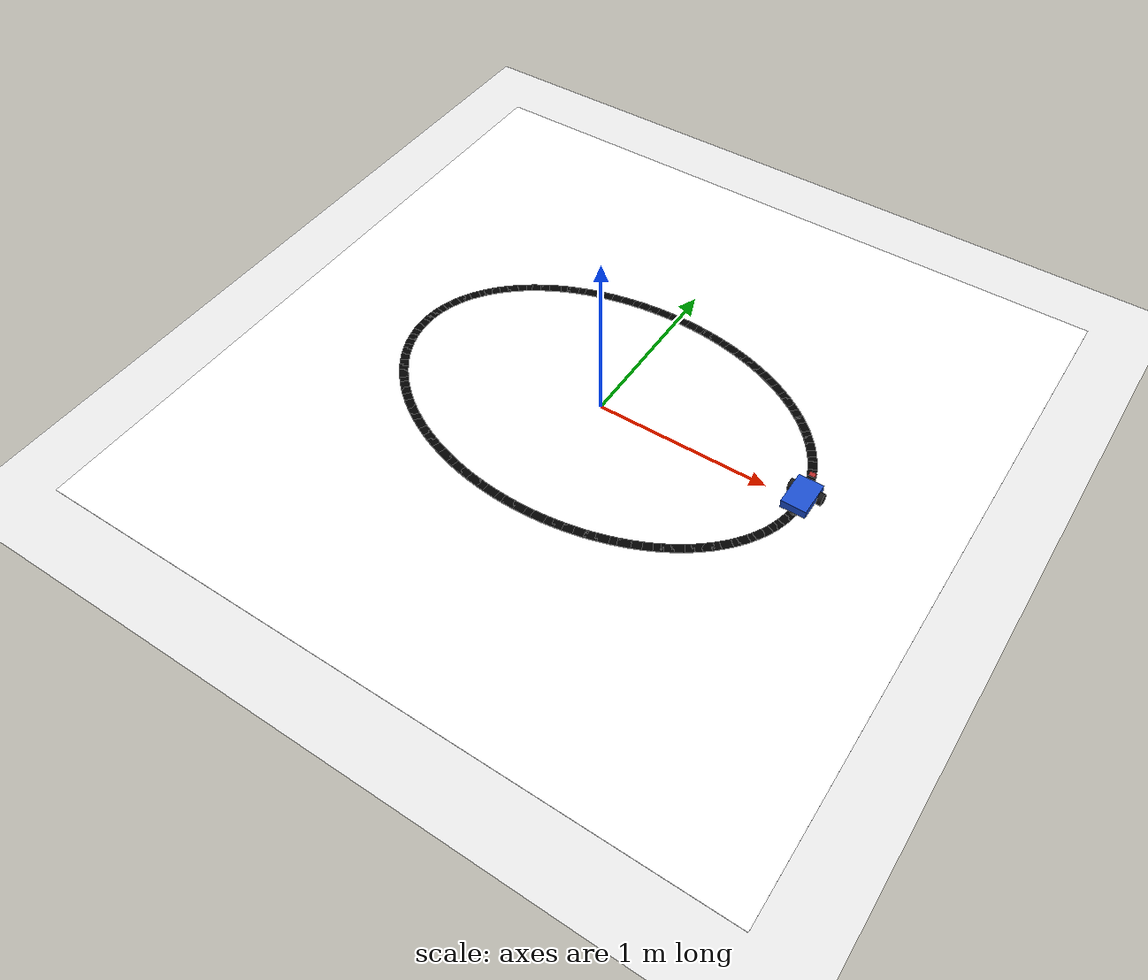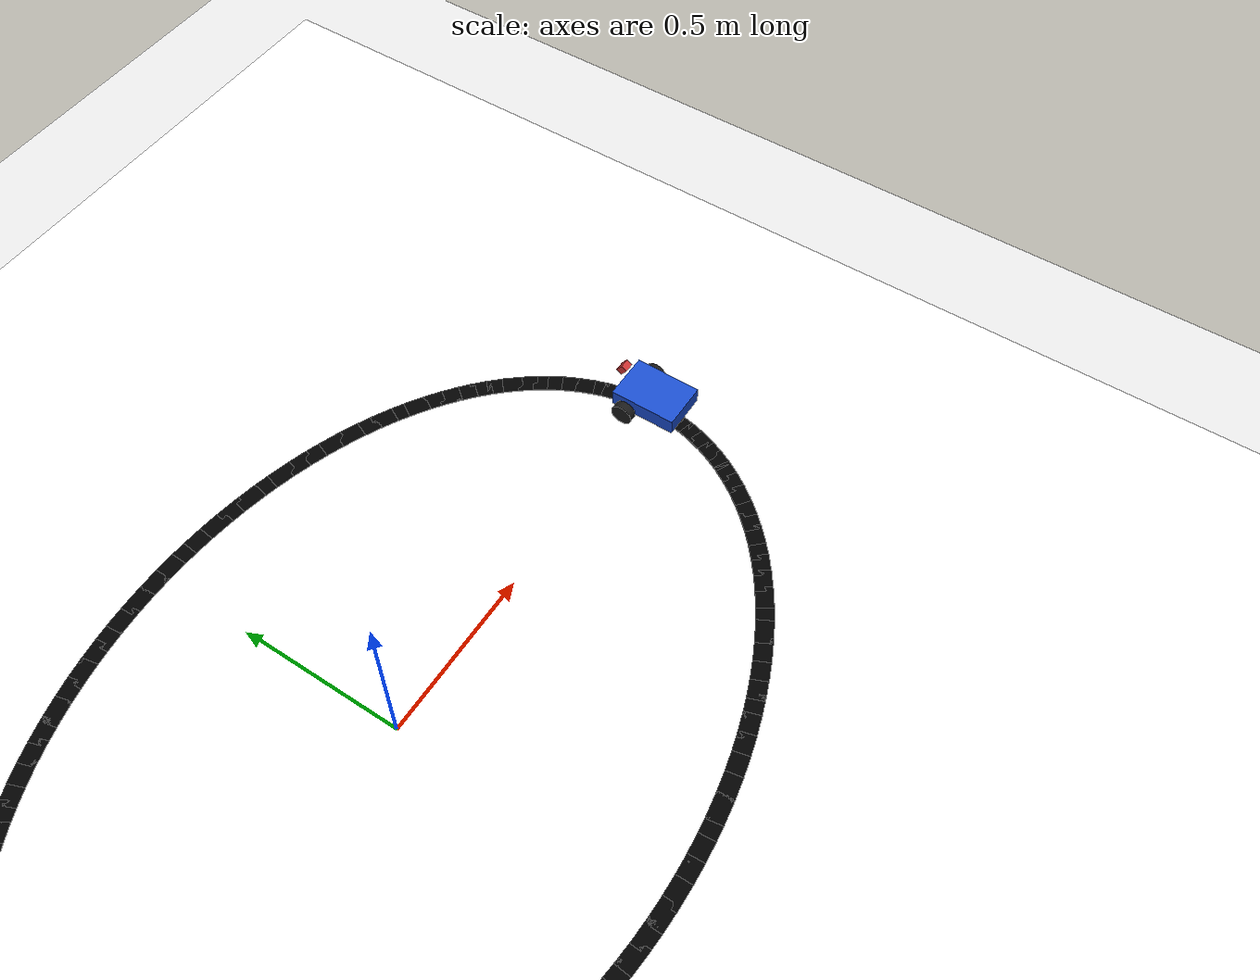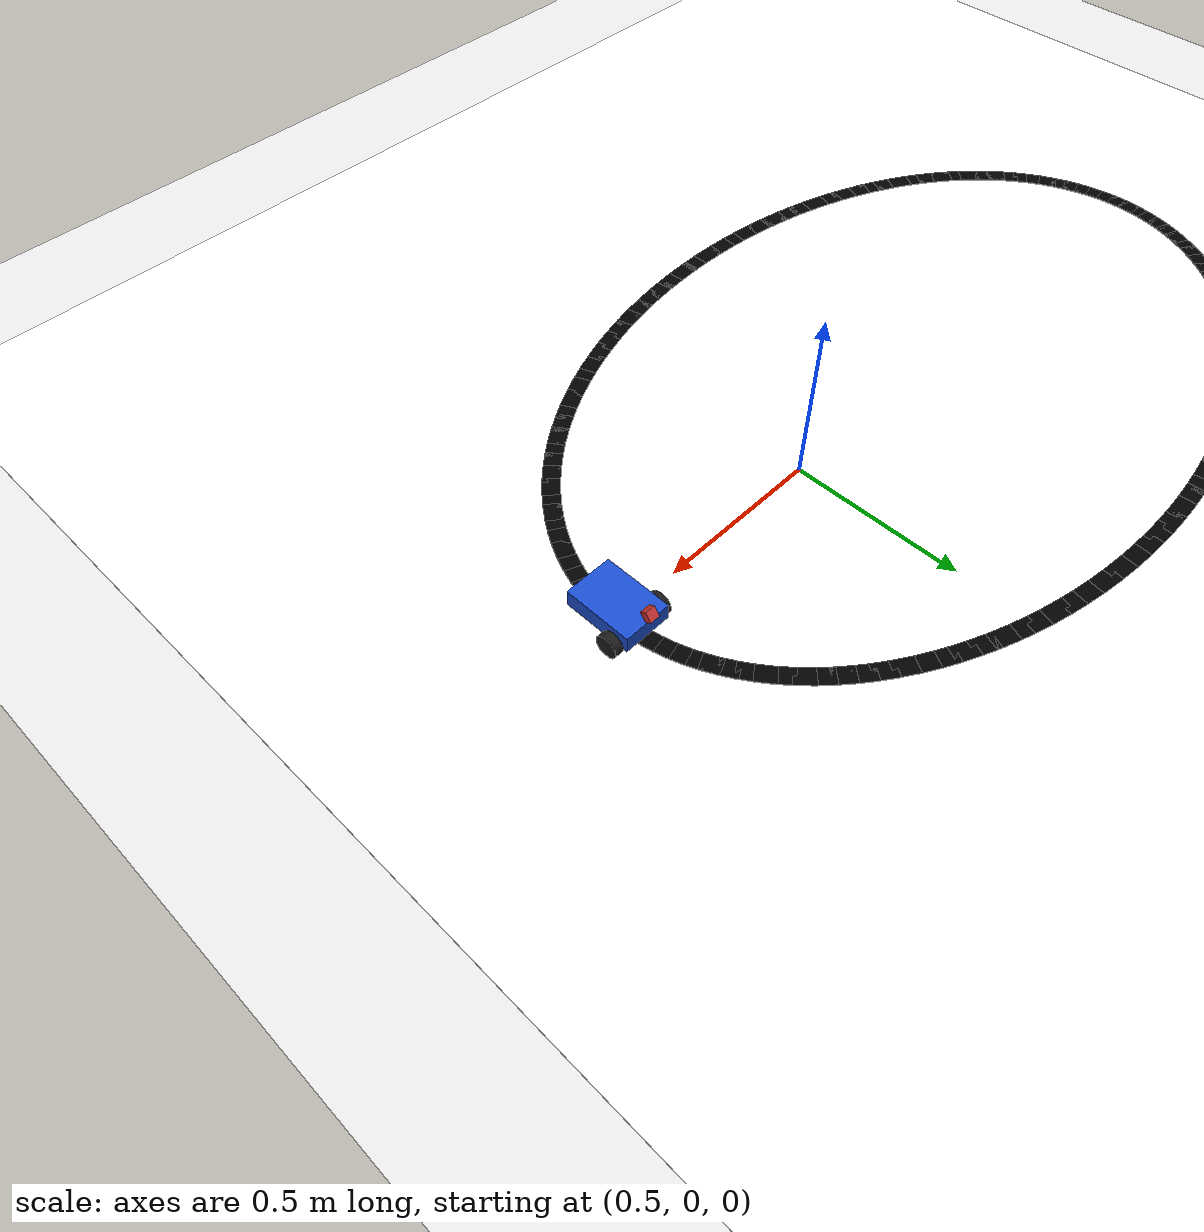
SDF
<?xml version="1.0"?>
<sdf version="1.8">
  <world name="track_oval">
    <physics name="1ms" type="ignored">
      <max_step_size>0.001</max_step_size>
      <real_time_factor>1.0</real_time_factor>
    </physics>
    <plugin filename="ignition-gazebo-physics-system"
            name="ignition::gazebo::systems::Physics"/>
    <plugin filename="ignition-gazebo-user-commands-system"
            name="ignition::gazebo::systems::UserCommands"/>
    <plugin filename="ignition-gazebo-scene-broadcaster-system"
            name="ignition::gazebo::systems::SceneBroadcaster"/>
    <plugin filename="ignition-gazebo-sensors-system"
            name="ignition::gazebo::systems::Sensors">
      <render_engine>ogre2</render_engine>
    </plugin>

    <light type="directional" name="sun">
      <cast_shadows>true</cast_shadows>
      <pose>0 0 10 0 0 0</pose>
      <diffuse>0.8 0.8 0.8 1</diffuse>
      <specular>0.2 0.2 0.2 1</specular>
      <direction>-0.5 0.1 -0.9</direction>
    </light>

    <model name="ground_plane">
      <static>true</static>
      <link name="link">
        <collision name="collision">
          <geometry>
            <plane><normal>0 0 1</normal><size>20 20</size></plane>
          </geometry>
        </collision>
        <visual name="visual">
          <geometry>
            <plane><normal>0 0 1</normal><size>20 20</size></plane>
          </geometry>
          <material>
            <ambient>0.9 0.9 0.9 1</ambient>
            <diffuse>0.9 0.9 0.9 1</diffuse>
          </material>
        </visual>
      </link>
    </model>

    <include>
      <uri>model://track_floor</uri>
      <pose>0 0 0.001 0 0 0</pose>
    </include>
    <include>
      <uri>model://track_line</uri>
      <pose>0 0 0 0 0 0</pose>
    </include>

    <!-- Spawn on the oval's rightmost point (1.2, 0), facing +y: the
         tangent direction of the counterclockwise centerline there. -->
    <include>
      <uri>model://linefollower_bot</uri>
      <pose>1.2 0 0 0 0 1.5708</pose>
    </include>
  </world>
</sdf>

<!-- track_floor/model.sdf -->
<sdf version="1.8">
  <model name="track_floor">
    <static>true</static>
    <link name="link">
      <visual name="visual">
        <geometry>
          <box><size>4 4 0.002</size></box>
        </geometry>
        <material>
          <ambient>1 1 1 1</ambient>
          <diffuse>1 1 1 1</diffuse>
          <specular>0.1 0.1 0.1 1</specular>
        </material>
      </visual>
    </link>
  </model>
</sdf>

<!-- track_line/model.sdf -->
<!-- GENERATED by scripts/generate_track.py — edit that script, not this file. -->
<sdf version="1.8">
  <model name="track_line">
    <static>true</static>
    <link name="link">
      <visual name="seg_0">
        <pose>1.1993 0.0196 0.003 0 0 1.6076</pose>
        <geometry>
          <box><size>0.0511 0.05 0.002</size></box>
        </geometry>
        <material>
          <ambient>0 0 0 1</ambient>
          <diffuse>0 0 0 1</diffuse>
        </material>
      </visual>
      <visual name="seg_1">
        <pose>1.1964 0.0588 0.003 0 0 1.6810</pose>
        <geometry>
          <box><size>0.0512 0.05 0.002</size></box>
        </geometry>
        <material>
          <ambient>0 0 0 1</ambient>
          <diffuse>0 0 0 1</diffuse>
        </material>
      </visual>
      <visual name="seg_2">
        <pose>1.1906 0.0979 0.003 0 0 1.7537</pose>
        <geometry>
          <box><size>0.0515 0.05 0.002</size></box>
        </geometry>
        <material>
          <ambient>0 0 0 1</ambient>
          <diffuse>0 0 0 1</diffuse>
        </material>
      </visual>
      <visual name="seg_3">
        <pose>1.1820 0.1367 0.003 0 0 1.8254</pose>
        <geometry>
          <box><size>0.0520 0.05 0.002</size></box>
        </geometry>
        <material>
          <ambient>0 0 0 1</ambient>
          <diffuse>0 0 0 1</diffuse>
        </material>
      </visual>
      <visual name="seg_4">
        <pose>1.1705 0.1752 0.003 0 0 1.8957</pose>
        <geometry>
          <box><size>0.0526 0.05 0.002</size></box>
        </geometry>
        <material>
          <ambient>0 0 0 1</ambient>
          <diffuse>0 0 0 1</diffuse>
        </material>
      </visual>
      <visual name="seg_5">
        <pose>1.1562 0.2133 0.003 0 0 1.9643</pose>
        <geometry>
          <box><size>0.0533 0.05 0.002</size></box>
        </geometry>
        <material>
          <ambient>0 0 0 1</ambient>
          <diffuse>0 0 0 1</diffuse>
        </material>
      </visual>
      <visual name="seg_6">
        <pose>1.1391 0.2509 0.003 0 0 2.0309</pose>
        <geometry>
          <box><size>0.0541 0.05 0.002</size></box>
        </geometry>
        <material>
          <ambient>0 0 0 1</ambient>
          <diffuse>0 0 0 1</diffuse>
        </material>
      </visual>
      <visual name="seg_7">
        <pose>1.1193 0.2878 0.003 0 0 2.0953</pose>
        <geometry>
          <box><size>0.0550 0.05 0.002</size></box>
        </geometry>
        <material>
          <ambient>0 0 0 1</ambient>
          <diffuse>0 0 0 1</diffuse>
        </material>
      </visual>
      <visual name="seg_8">
        <pose>1.0967 0.3241 0.003 0 0 2.1576</pose>
        <geometry>
          <box><size>0.0560 0.05 0.002</size></box>
        </geometry>
        <material>
          <ambient>0 0 0 1</ambient>
          <diffuse>0 0 0 1</diffuse>
        </material>
      </visual>
      <visual name="seg_9">
        <pose>1.0715 0.3596 0.003 0 0 2.2175</pose>
        <geometry>
          <box><size>0.0571 0.05 0.002</size></box>
        </geometry>
        <material>
          <ambient>0 0 0 1</ambient>
          <diffuse>0 0 0 1</diffuse>
        </material>
      </visual>
      <visual name="seg_10">
        <pose>1.0438 0.3942 0.003 0 0 2.2751</pose>
        <geometry>
          <box><size>0.0583 0.05 0.002</size></box>
        </geometry>
        <material>
          <ambient>0 0 0 1</ambient>
          <diffuse>0 0 0 1</diffuse>
        </material>
      </visual>
      <visual name="seg_11">
        <pose>1.0135 0.4279 0.003 0 0 2.3305</pose>
        <geometry>
          <box><size>0.0595 0.05 0.002</size></box>
        </geometry>
        <material>
          <ambient>0 0 0 1</ambient>
          <diffuse>0 0 0 1</diffuse>
        </material>
      </visual>
      <visual name="seg_12">
        <pose>0.9808 0.4605 0.003 0 0 2.3836</pose>
        <geometry>
          <box><size>0.0607 0.05 0.002</size></box>
        </geometry>
        <material>
          <ambient>0 0 0 1</ambient>
          <diffuse>0 0 0 1</diffuse>
        </material>
      </visual>
      <visual name="seg_13">
        <pose>0.9457 0.4920 0.003 0 0 2.4346</pose>
        <geometry>
          <box><size>0.0620 0.05 0.002</size></box>
        </geometry>
        <material>
          <ambient>0 0 0 1</ambient>
          <diffuse>0 0 0 1</diffuse>
        </material>
      </visual>
      <visual name="seg_14">
        <pose>0.9084 0.5224 0.003 0 0 2.4836</pose>
        <geometry>
          <box><size>0.0632 0.05 0.002</size></box>
        </geometry>
        <material>
          <ambient>0 0 0 1</ambient>
          <diffuse>0 0 0 1</diffuse>
        </material>
      </visual>
      <visual name="seg_15">
        <pose>0.8688 0.5515 0.003 0 0 2.5307</pose>
        <geometry>
          <box><size>0.0645 0.05 0.002</size></box>
        </geometry>
        <material>
          <ambient>0 0 0 1</ambient>
          <diffuse>0 0 0 1</diffuse>
        </material>
      </visual>
      <visual name="seg_16">
        <pose>0.8272 0.5792 0.003 0 0 2.5760</pose>
        <geometry>
          <box><size>0.0657 0.05 0.002</size></box>
        </geometry>
        <material>
          <ambient>0 0 0 1</ambient>
          <diffuse>0 0 0 1</diffuse>
        </material>
      </visual>
      <visual name="seg_17">
        <pose>0.7836 0.6056 0.003 0 0 2.6197</pose>
        <geometry>
          <box><size>0.0669 0.05 0.002</size></box>
        </geometry>
        <material>
          <ambient>0 0 0 1</ambient>
          <diffuse>0 0 0 1</diffuse>
        </material>
      </visual>
      <visual name="seg_18">
        <pose>0.7381 0.6305 0.003 0 0 2.6619</pose>
        <geometry>
          <box><size>0.0680 0.05 0.002</size></box>
        </geometry>
        <material>
          <ambient>0 0 0 1</ambient>
          <diffuse>0 0 0 1</diffuse>
        </material>
      </visual>
      <visual name="seg_19">
        <pose>0.6908 0.6539 0.003 0 0 2.7026</pose>
        <geometry>
          <box><size>0.0692 0.05 0.002</size></box>
        </geometry>
        <material>
          <ambient>0 0 0 1</ambient>
          <diffuse>0 0 0 1</diffuse>
        </material>
      </visual>
      <visual name="seg_20">
        <pose>0.6418 0.6757 0.003 0 0 2.7421</pose>
        <geometry>
          <box><size>0.0702 0.05 0.002</size></box>
        </geometry>
        <material>
          <ambient>0 0 0 1</ambient>
          <diffuse>0 0 0 1</diffuse>
        </material>
      </visual>
      <visual name="seg_21">
        <pose>0.5913 0.6959 0.003 0 0 2.7805</pose>
        <geometry>
          <box><size>0.0712 0.05 0.002</size></box>
        </geometry>
        <material>
          <ambient>0 0 0 1</ambient>
          <diffuse>0 0 0 1</diffuse>
        </material>
      </visual>
      <visual name="seg_22">
        <pose>0.5394 0.7144 0.003 0 0 2.8178</pose>
        <geometry>
          <box><size>0.0721 0.05 0.002</size></box>
        </geometry>
        <material>
          <ambient>0 0 0 1</ambient>
          <diffuse>0 0 0 1</diffuse>
        </material>
      </visual>
      <visual name="seg_23">
        <pose>0.4861 0.7311 0.003 0 0 2.8543</pose>
        <geometry>
          <box><size>0.0730 0.05 0.002</size></box>
        </geometry>
        <material>
          <ambient>0 0 0 1</ambient>
          <diffuse>0 0 0 1</diffuse>
        </material>
      </visual>
      <visual name="seg_24">
        <pose>0.4317 0.7462 0.003 0 0 2.8899</pose>
        <geometry>
          <box><size>0.0738 0.05 0.002</size></box>
        </geometry>
        <material>
          <ambient>0 0 0 1</ambient>
          <diffuse>0 0 0 1</diffuse>
        </material>
      </visual>
      <visual name="seg_25">
        <pose>0.3763 0.7594 0.003 0 0 2.9248</pose>
        <geometry>
          <box><size>0.0744 0.05 0.002</size></box>
        </geometry>
        <material>
          <ambient>0 0 0 1</ambient>
          <diffuse>0 0 0 1</diffuse>
        </material>
      </visual>
      <visual name="seg_26">
        <pose>0.3200 0.7708 0.003 0 0 2.9592</pose>
        <geometry>
          <box><size>0.0750 0.05 0.002</size></box>
        </geometry>
        <material>
          <ambient>0 0 0 1</ambient>
          <diffuse>0 0 0 1</diffuse>
        </material>
      </visual>
      <visual name="seg_27">
        <pose>0.2628 0.7803 0.003 0 0 2.9930</pose>
        <geometry>
          <box><size>0.0755 0.05 0.002</size></box>
        </geometry>
        <material>
          <ambient>0 0 0 1</ambient>
          <diffuse>0 0 0 1</diffuse>
        </material>
      </visual>
      <visual name="seg_28">
        <pose>0.2051 0.7880 0.003 0 0 3.0264</pose>
        <geometry>
          <box><size>0.0759 0.05 0.002</size></box>
        </geometry>
        <material>
          <ambient>0 0 0 1</ambient>
          <diffuse>0 0 0 1</diffuse>
        </material>
      </visual>
      <visual name="seg_29">
        <pose>0.1468 0.7937 0.003 0 0 3.0596</pose>
        <geometry>
          <box><size>0.0762 0.05 0.002</size></box>
        </geometry>
        <material>
          <ambient>0 0 0 1</ambient>
          <diffuse>0 0 0 1</diffuse>
        </material>
      </visual>
      <visual name="seg_30">
        <pose>0.0883 0.7976 0.003 0 0 3.0925</pose>
        <geometry>
          <box><size>0.0765 0.05 0.002</size></box>
        </geometry>
        <material>
          <ambient>0 0 0 1</ambient>
          <diffuse>0 0 0 1</diffuse>
        </material>
      </visual>
      <visual name="seg_31">
        <pose>0.0294 0.7995 0.003 0 0 3.1252</pose>
        <geometry>
          <box><size>0.0766 0.05 0.002</size></box>
        </geometry>
        <material>
          <ambient>0 0 0 1</ambient>
          <diffuse>0 0 0 1</diffuse>
        </material>
      </visual>
      <visual name="seg_32">
        <pose>-0.0294 0.7995 0.003 0 0 -3.1252</pose>
        <geometry>
          <box><size>0.0766 0.05 0.002</size></box>
        </geometry>
        <material>
          <ambient>0 0 0 1</ambient>
          <diffuse>0 0 0 1</diffuse>
        </material>
      </visual>
      <visual name="seg_33">
        <pose>-0.0883 0.7976 0.003 0 0 -3.0925</pose>
        <geometry>
          <box><size>0.0765 0.05 0.002</size></box>
        </geometry>
        <material>
          <ambient>0 0 0 1</ambient>
          <diffuse>0 0 0 1</diffuse>
        </material>
      </visual>
      <visual name="seg_34">
        <pose>-0.1468 0.7937 0.003 0 0 -3.0596</pose>
        <geometry>
          <box><size>0.0762 0.05 0.002</size></box>
        </geometry>
        <material>
          <ambient>0 0 0 1</ambient>
          <diffuse>0 0 0 1</diffuse>
        </material>
      </visual>
      <visual name="seg_35">
        <pose>-0.2051 0.7880 0.003 0 0 -3.0264</pose>
        <geometry>
          <box><size>0.0759 0.05 0.002</size></box>
        </geometry>
        <material>
          <ambient>0 0 0 1</ambient>
          <diffuse>0 0 0 1</diffuse>
        </material>
      </visual>
      <visual name="seg_36">
        <pose>-0.2628 0.7803 0.003 0 0 -2.9930</pose>
        <geometry>
          <box><size>0.0755 0.05 0.002</size></box>
        </geometry>
        <material>
          <ambient>0 0 0 1</ambient>
          <diffuse>0 0 0 1</diffuse>
        </material>
      </visual>
      <visual name="seg_37">
        <pose>-0.3200 0.7708 0.003 0 0 -2.9592</pose>
        <geometry>
          <box><size>0.0750 0.05 0.002</size></box>
        </geometry>
        <material>
          <ambient>0 0 0 1</ambient>
          <diffuse>0 0 0 1</diffuse>
        </material>
      </visual>
      <visual name="seg_38">
        <pose>-0.3763 0.7594 0.003 0 0 -2.9248</pose>
        <geometry>
          <box><size>0.0744 0.05 0.002</size></box>
        </geometry>
        <material>
          <ambient>0 0 0 1</ambient>
          <diffuse>0 0 0 1</diffuse>
        </material>
      </visual>
      <visual name="seg_39">
        <pose>-0.4317 0.7462 0.003 0 0 -2.8899</pose>
        <geometry>
          <box><size>0.0738 0.05 0.002</size></box>
        </geometry>
        <material>
          <ambient>0 0 0 1</ambient>
          <diffuse>0 0 0 1</diffuse>
        </material>
      </visual>
      <visual name="seg_40">
        <pose>-0.4861 0.7311 0.003 0 0 -2.8543</pose>
        <geometry>
          <box><size>0.0730 0.05 0.002</size></box>
        </geometry>
        <material>
          <ambient>0 0 0 1</ambient>
          <diffuse>0 0 0 1</diffuse>
        </material>
      </visual>
      <visual name="seg_41">
        <pose>-0.5394 0.7144 0.003 0 0 -2.8178</pose>
        <geometry>
          <box><size>0.0721 0.05 0.002</size></box>
        </geometry>
        <material>
          <ambient>0 0 0 1</ambient>
          <diffuse>0 0 0 1</diffuse>
        </material>
      </visual>
      <visual name="seg_42">
        <pose>-0.5913 0.6959 0.003 0 0 -2.7805</pose>
        <geometry>
          <box><size>0.0712 0.05 0.002</size></box>
        </geometry>
        <material>
          <ambient>0 0 0 1</ambient>
          <diffuse>0 0 0 1</diffuse>
        </material>
      </visual>
      <visual name="seg_43">
        <pose>-0.6418 0.6757 0.003 0 0 -2.7421</pose>
        <geometry>
          <box><size>0.0702 0.05 0.002</size></box>
        </geometry>
        <material>
          <ambient>0 0 0 1</ambient>
          <diffuse>0 0 0 1</diffuse>
        </material>
      </visual>
      <visual name="seg_44">
        <pose>-0.6908 0.6539 0.003 0 0 -2.7026</pose>
        <geometry>
          <box><size>0.0692 0.05 0.002</size></box>
        </geometry>
        <material>
          <ambient>0 0 0 1</ambient>
          <diffuse>0 0 0 1</diffuse>
        </material>
      </visual>
      <visual name="seg_45">
        <pose>-0.7381 0.6305 0.003 0 0 -2.6619</pose>
        <geometry>
          <box><size>0.0680 0.05 0.002</size></box>
        </geometry>
        <material>
          <ambient>0 0 0 1</ambient>
          <diffuse>0 0 0 1</diffuse>
        </material>
      </visual>
      <visual name="seg_46">
        <pose>-0.7836 0.6056 0.003 0 0 -2.6197</pose>
        <geometry>
          <box><size>0.0669 0.05 0.002</size></box>
        </geometry>
        <material>
          <ambient>0 0 0 1</ambient>
          <diffuse>0 0 0 1</diffuse>
        </material>
      </visual>
      <visual name="seg_47">
        <pose>-0.8272 0.5792 0.003 0 0 -2.5760</pose>
        <geometry>
          <box><size>0.0657 0.05 0.002</size></box>
        </geometry>
        <material>
          <ambient>0 0 0 1</ambient>
          <diffuse>0 0 0 1</diffuse>
        </material>
      </visual>
      <visual name="seg_48">
        <pose>-0.8688 0.5515 0.003 0 0 -2.5307</pose>
        <geometry>
          <box><size>0.0645 0.05 0.002</size></box>
        </geometry>
        <material>
          <ambient>0 0 0 1</ambient>
          <diffuse>0 0 0 1</diffuse>
        </material>
      </visual>
      <visual name="seg_49">
        <pose>-0.9084 0.5224 0.003 0 0 -2.4836</pose>
        <geometry>
          <box><size>0.0632 0.05 0.002</size></box>
        </geometry>
        <material>
          <ambient>0 0 0 1</ambient>
          <diffuse>0 0 0 1</diffuse>
        </material>
      </visual>
      <visual name="seg_50">
        <pose>-0.9457 0.4920 0.003 0 0 -2.4346</pose>
        <geometry>
          <box><size>0.0620 0.05 0.002</size></box>
        </geometry>
        <material>
          <ambient>0 0 0 1</ambient>
          <diffuse>0 0 0 1</diffuse>
        </material>
      </visual>
      <visual name="seg_51">
        <pose>-0.9808 0.4605 0.003 0 0 -2.3836</pose>
        <geometry>
          <box><size>0.0607 0.05 0.002</size></box>
        </geometry>
        <material>
          <ambient>0 0 0 1</ambient>
          <diffuse>0 0 0 1</diffuse>
        </material>
      </visual>
      <visual name="seg_52">
        <pose>-1.0135 0.4279 0.003 0 0 -2.3305</pose>
        <geometry>
          <box><size>0.0595 0.05 0.002</size></box>
        </geometry>
        <material>
          <ambient>0 0 0 1</ambient>
          <diffuse>0 0 0 1</diffuse>
        </material>
      </visual>
      <visual name="seg_53">
        <pose>-1.0438 0.3942 0.003 0 0 -2.2751</pose>
        <geometry>
          <box><size>0.0583 0.05 0.002</size></box>
        </geometry>
        <material>
          <ambient>0 0 0 1</ambient>
          <diffuse>0 0 0 1</diffuse>
        </material>
      </visual>
      <visual name="seg_54">
        <pose>-1.0715 0.3596 0.003 0 0 -2.2175</pose>
        <geometry>
          <box><size>0.0571 0.05 0.002</size></box>
        </geometry>
        <material>
          <ambient>0 0 0 1</ambient>
          <diffuse>0 0 0 1</diffuse>
        </material>
      </visual>
      <visual name="seg_55">
        <pose>-1.0967 0.3241 0.003 0 0 -2.1576</pose>
        <geometry>
          <box><size>0.0560 0.05 0.002</size></box>
        </geometry>
        <material>
          <ambient>0 0 0 1</ambient>
          <diffuse>0 0 0 1</diffuse>
        </material>
      </visual>
      <visual name="seg_56">
        <pose>-1.1193 0.2878 0.003 0 0 -2.0953</pose>
        <geometry>
          <box><size>0.0550 0.05 0.002</size></box>
        </geometry>
        <material>
          <ambient>0 0 0 1</ambient>
          <diffuse>0 0 0 1</diffuse>
        </material>
      </visual>
      <visual name="seg_57">
        <pose>-1.1391 0.2509 0.003 0 0 -2.0309</pose>
        <geometry>
          <box><size>0.0541 0.05 0.002</size></box>
        </geometry>
        <material>
          <ambient>0 0 0 1</ambient>
          <diffuse>0 0 0 1</diffuse>
        </material>
      </visual>
      <visual name="seg_58">
        <pose>-1.1562 0.2133 0.003 0 0 -1.9643</pose>
        <geometry>
          <box><size>0.0533 0.05 0.002</size></box>
        </geometry>
        <material>
          <ambient>0 0 0 1</ambient>
          <diffuse>0 0 0 1</diffuse>
        </material>
      </visual>
      <visual name="seg_59">
        <pose>-1.1705 0.1752 0.003 0 0 -1.8957</pose>
        <geometry>
          <box><size>0.0526 0.05 0.002</size></box>
        </geometry>
        <material>
          <ambient>0 0 0 1</ambient>
          <diffuse>0 0 0 1</diffuse>
        </material>
      </visual>
      <visual name="seg_60">
        <pose>-1.1820 0.1367 0.003 0 0 -1.8254</pose>
        <geometry>
          <box><size>0.0520 0.05 0.002</size></box>
        </geometry>
        <material>
          <ambient>0 0 0 1</ambient>
          <diffuse>0 0 0 1</diffuse>
        </material>
      </visual>
      <visual name="seg_61">
        <pose>-1.1906 0.0979 0.003 0 0 -1.7537</pose>
        <geometry>
          <box><size>0.0515 0.05 0.002</size></box>
        </geometry>
        <material>
          <ambient>0 0 0 1</ambient>
          <diffuse>0 0 0 1</diffuse>
        </material>
      </visual>
      <visual name="seg_62">
        <pose>-1.1964 0.0588 0.003 0 0 -1.6810</pose>
        <geometry>
          <box><size>0.0512 0.05 0.002</size></box>
        </geometry>
        <material>
          <ambient>0 0 0 1</ambient>
          <diffuse>0 0 0 1</diffuse>
        </material>
      </visual>
      <visual name="seg_63">
        <pose>-1.1993 0.0196 0.003 0 0 -1.6076</pose>
        <geometry>
          <box><size>0.0511 0.05 0.002</size></box>
        </geometry>
        <material>
          <ambient>0 0 0 1</ambient>
          <diffuse>0 0 0 1</diffuse>
        </material>
      </visual>
      <visual name="seg_64">
        <pose>-1.1993 -0.0196 0.003 0 0 -1.5340</pose>
        <geometry>
          <box><size>0.0511 0.05 0.002</size></box>
        </geometry>
        <material>
          <ambient>0 0 0 1</ambient>
          <diffuse>0 0 0 1</diffuse>
        </material>
      </visual>
      <visual name="seg_65">
        <pose>-1.1964 -0.0588 0.003 0 0 -1.4606</pose>
        <geometry>
          <box><size>0.0512 0.05 0.002</size></box>
        </geometry>
        <material>
          <ambient>0 0 0 1</ambient>
          <diffuse>0 0 0 1</diffuse>
        </material>
      </visual>
      <visual name="seg_66">
        <pose>-1.1906 -0.0979 0.003 0 0 -1.3879</pose>
        <geometry>
          <box><size>0.0515 0.05 0.002</size></box>
        </geometry>
        <material>
          <ambient>0 0 0 1</ambient>
          <diffuse>0 0 0 1</diffuse>
        </material>
      </visual>
      <visual name="seg_67">
        <pose>-1.1820 -0.1367 0.003 0 0 -1.3162</pose>
        <geometry>
          <box><size>0.0520 0.05 0.002</size></box>
        </geometry>
        <material>
          <ambient>0 0 0 1</ambient>
          <diffuse>0 0 0 1</diffuse>
        </material>
      </visual>
      <visual name="seg_68">
        <pose>-1.1705 -0.1752 0.003 0 0 -1.2459</pose>
        <geometry>
          <box><size>0.0526 0.05 0.002</size></box>
        </geometry>
        <material>
          <ambient>0 0 0 1</ambient>
          <diffuse>0 0 0 1</diffuse>
        </material>
      </visual>
      <visual name="seg_69">
        <pose>-1.1562 -0.2133 0.003 0 0 -1.1773</pose>
        <geometry>
          <box><size>0.0533 0.05 0.002</size></box>
        </geometry>
        <material>
          <ambient>0 0 0 1</ambient>
          <diffuse>0 0 0 1</diffuse>
        </material>
      </visual>
      <visual name="seg_70">
        <pose>-1.1391 -0.2509 0.003 0 0 -1.1107</pose>
        <geometry>
          <box><size>0.0541 0.05 0.002</size></box>
        </geometry>
        <material>
          <ambient>0 0 0 1</ambient>
          <diffuse>0 0 0 1</diffuse>
        </material>
      </visual>
      <visual name="seg_71">
        <pose>-1.1193 -0.2878 0.003 0 0 -1.0463</pose>
        <geometry>
          <box><size>0.0550 0.05 0.002</size></box>
        </geometry>
        <material>
          <ambient>0 0 0 1</ambient>
          <diffuse>0 0 0 1</diffuse>
        </material>
      </visual>
      <visual name="seg_72">
        <pose>-1.0967 -0.3241 0.003 0 0 -0.9840</pose>
        <geometry>
          <box><size>0.0560 0.05 0.002</size></box>
        </geometry>
        <material>
          <ambient>0 0 0 1</ambient>
          <diffuse>0 0 0 1</diffuse>
        </material>
      </visual>
      <visual name="seg_73">
        <pose>-1.0715 -0.3596 0.003 0 0 -0.9241</pose>
        <geometry>
          <box><size>0.0571 0.05 0.002</size></box>
        </geometry>
        <material>
          <ambient>0 0 0 1</ambient>
          <diffuse>0 0 0 1</diffuse>
        </material>
      </visual>
      <visual name="seg_74">
        <pose>-1.0438 -0.3942 0.003 0 0 -0.8665</pose>
        <geometry>
          <box><size>0.0583 0.05 0.002</size></box>
        </geometry>
        <material>
          <ambient>0 0 0 1</ambient>
          <diffuse>0 0 0 1</diffuse>
        </material>
      </visual>
      <visual name="seg_75">
        <pose>-1.0135 -0.4279 0.003 0 0 -0.8111</pose>
        <geometry>
          <box><size>0.0595 0.05 0.002</size></box>
        </geometry>
        <material>
          <ambient>0 0 0 1</ambient>
          <diffuse>0 0 0 1</diffuse>
        </material>
      </visual>
      <visual name="seg_76">
        <pose>-0.9808 -0.4605 0.003 0 0 -0.7580</pose>
        <geometry>
          <box><size>0.0607 0.05 0.002</size></box>
        </geometry>
        <material>
          <ambient>0 0 0 1</ambient>
          <diffuse>0 0 0 1</diffuse>
        </material>
      </visual>
      <visual name="seg_77">
        <pose>-0.9457 -0.4920 0.003 0 0 -0.7070</pose>
        <geometry>
          <box><size>0.0620 0.05 0.002</size></box>
        </geometry>
        <material>
          <ambient>0 0 0 1</ambient>
          <diffuse>0 0 0 1</diffuse>
        </material>
      </visual>
      <visual name="seg_78">
        <pose>-0.9084 -0.5224 0.003 0 0 -0.6580</pose>
        <geometry>
          <box><size>0.0632 0.05 0.002</size></box>
        </geometry>
        <material>
          <ambient>0 0 0 1</ambient>
          <diffuse>0 0 0 1</diffuse>
        </material>
      </visual>
      <visual name="seg_79">
        <pose>-0.8688 -0.5515 0.003 0 0 -0.6109</pose>
        <geometry>
          <box><size>0.0645 0.05 0.002</size></box>
        </geometry>
        <material>
          <ambient>0 0 0 1</ambient>
          <diffuse>0 0 0 1</diffuse>
        </material>
      </visual>
      <visual name="seg_80">
        <pose>-0.8272 -0.5792 0.003 0 0 -0.5656</pose>
        <geometry>
          <box><size>0.0657 0.05 0.002</size></box>
        </geometry>
        <material>
          <ambient>0 0 0 1</ambient>
          <diffuse>0 0 0 1</diffuse>
        </material>
      </visual>
      <visual name="seg_81">
        <pose>-0.7836 -0.6056 0.003 0 0 -0.5219</pose>
        <geometry>
          <box><size>0.0669 0.05 0.002</size></box>
        </geometry>
        <material>
          <ambient>0 0 0 1</ambient>
          <diffuse>0 0 0 1</diffuse>
        </material>
      </visual>
      <visual name="seg_82">
        <pose>-0.7381 -0.6305 0.003 0 0 -0.4797</pose>
        <geometry>
          <box><size>0.0680 0.05 0.002</size></box>
        </geometry>
        <material>
          <ambient>0 0 0 1</ambient>
          <diffuse>0 0 0 1</diffuse>
        </material>
      </visual>
      <visual name="seg_83">
        <pose>-0.6908 -0.6539 0.003 0 0 -0.4390</pose>
        <geometry>
          <box><size>0.0692 0.05 0.002</size></box>
        </geometry>
        <material>
          <ambient>0 0 0 1</ambient>
          <diffuse>0 0 0 1</diffuse>
        </material>
      </visual>
      <visual name="seg_84">
        <pose>-0.6418 -0.6757 0.003 0 0 -0.3995</pose>
        <geometry>
          <box><size>0.0702 0.05 0.002</size></box>
        </geometry>
        <material>
          <ambient>0 0 0 1</ambient>
          <diffuse>0 0 0 1</diffuse>
        </material>
      </visual>
      <visual name="seg_85">
        <pose>-0.5913 -0.6959 0.003 0 0 -0.3611</pose>
        <geometry>
          <box><size>0.0712 0.05 0.002</size></box>
        </geometry>
        <material>
          <ambient>0 0 0 1</ambient>
          <diffuse>0 0 0 1</diffuse>
        </material>
      </visual>
      <visual name="seg_86">
        <pose>-0.5394 -0.7144 0.003 0 0 -0.3238</pose>
        <geometry>
          <box><size>0.0721 0.05 0.002</size></box>
        </geometry>
        <material>
          <ambient>0 0 0 1</ambient>
          <diffuse>0 0 0 1</diffuse>
        </material>
      </visual>
      <visual name="seg_87">
        <pose>-0.4861 -0.7311 0.003 0 0 -0.2873</pose>
        <geometry>
          <box><size>0.0730 0.05 0.002</size></box>
        </geometry>
        <material>
          <ambient>0 0 0 1</ambient>
          <diffuse>0 0 0 1</diffuse>
        </material>
      </visual>
      <visual name="seg_88">
        <pose>-0.4317 -0.7462 0.003 0 0 -0.2517</pose>
        <geometry>
          <box><size>0.0738 0.05 0.002</size></box>
        </geometry>
        <material>
          <ambient>0 0 0 1</ambient>
          <diffuse>0 0 0 1</diffuse>
        </material>
      </visual>
      <visual name="seg_89">
        <pose>-0.3763 -0.7594 0.003 0 0 -0.2168</pose>
        <geometry>
          <box><size>0.0744 0.05 0.002</size></box>
        </geometry>
        <material>
          <ambient>0 0 0 1</ambient>
          <diffuse>0 0 0 1</diffuse>
        </material>
      </visual>
      <visual name="seg_90">
        <pose>-0.3200 -0.7708 0.003 0 0 -0.1824</pose>
        <geometry>
          <box><size>0.0750 0.05 0.002</size></box>
        </geometry>
        <material>
          <ambient>0 0 0 1</ambient>
          <diffuse>0 0 0 1</diffuse>
        </material>
      </visual>
      <visual name="seg_91">
        <pose>-0.2628 -0.7803 0.003 0 0 -0.1486</pose>
        <geometry>
          <box><size>0.0755 0.05 0.002</size></box>
        </geometry>
        <material>
          <ambient>0 0 0 1</ambient>
          <diffuse>0 0 0 1</diffuse>
        </material>
      </visual>
      <visual name="seg_92">
        <pose>-0.2051 -0.7880 0.003 0 0 -0.1152</pose>
        <geometry>
          <box><size>0.0759 0.05 0.002</size></box>
        </geometry>
        <material>
          <ambient>0 0 0 1</ambient>
          <diffuse>0 0 0 1</diffuse>
        </material>
      </visual>
      <visual name="seg_93">
        <pose>-0.1468 -0.7937 0.003 0 0 -0.0820</pose>
        <geometry>
          <box><size>0.0762 0.05 0.002</size></box>
        </geometry>
        <material>
          <ambient>0 0 0 1</ambient>
          <diffuse>0 0 0 1</diffuse>
        </material>
      </visual>
      <visual name="seg_94">
        <pose>-0.0883 -0.7976 0.003 0 0 -0.0491</pose>
        <geometry>
          <box><size>0.0765 0.05 0.002</size></box>
        </geometry>
        <material>
          <ambient>0 0 0 1</ambient>
          <diffuse>0 0 0 1</diffuse>
        </material>
      </visual>
      <visual name="seg_95">
        <pose>-0.0294 -0.7995 0.003 0 0 -0.0164</pose>
        <geometry>
          <box><size>0.0766 0.05 0.002</size></box>
        </geometry>
        <material>
          <ambient>0 0 0 1</ambient>
          <diffuse>0 0 0 1</diffuse>
        </material>
      </visual>
      <visual name="seg_96">
        <pose>0.0294 -0.7995 0.003 0 0 0.0164</pose>
        <geometry>
          <box><size>0.0766 0.05 0.002</size></box>
        </geometry>
        <material>
          <ambient>0 0 0 1</ambient>
          <diffuse>0 0 0 1</diffuse>
        </material>
      </visual>
      <visual name="seg_97">
        <pose>0.0883 -0.7976 0.003 0 0 0.0491</pose>
        <geometry>
          <box><size>0.0765 0.05 0.002</size></box>
        </geometry>
        <material>
          <ambient>0 0 0 1</ambient>
          <diffuse>0 0 0 1</diffuse>
        </material>
      </visual>
      <visual name="seg_98">
        <pose>0.1468 -0.7937 0.003 0 0 0.0820</pose>
        <geometry>
          <box><size>0.0762 0.05 0.002</size></box>
        </geometry>
        <material>
          <ambient>0 0 0 1</ambient>
          <diffuse>0 0 0 1</diffuse>
        </material>
      </visual>
      <visual name="seg_99">
        <pose>0.2051 -0.7880 0.003 0 0 0.1152</pose>
        <geometry>
          <box><size>0.0759 0.05 0.002</size></box>
        </geometry>
        <material>
          <ambient>0 0 0 1</ambient>
          <diffuse>0 0 0 1</diffuse>
        </material>
      </visual>
      <visual name="seg_100">
        <pose>0.2628 -0.7803 0.003 0 0 0.1486</pose>
        <geometry>
          <box><size>0.0755 0.05 0.002</size></box>
        </geometry>
        <material>
          <ambient>0 0 0 1</ambient>
          <diffuse>0 0 0 1</diffuse>
        </material>
      </visual>
      <visual name="seg_101">
        <pose>0.3200 -0.7708 0.003 0 0 0.1824</pose>
        <geometry>
          <box><size>0.0750 0.05 0.002</size></box>
        </geometry>
        <material>
          <ambient>0 0 0 1</ambient>
          <diffuse>0 0 0 1</diffuse>
        </material>
      </visual>
      <visual name="seg_102">
        <pose>0.3763 -0.7594 0.003 0 0 0.2168</pose>
        <geometry>
          <box><size>0.0744 0.05 0.002</size></box>
        </geometry>
        <material>
          <ambient>0 0 0 1</ambient>
          <diffuse>0 0 0 1</diffuse>
        </material>
      </visual>
      <visual name="seg_103">
        <pose>0.4317 -0.7462 0.003 0 0 0.2517</pose>
        <geometry>
          <box><size>0.0738 0.05 0.002</size></box>
        </geometry>
        <material>
          <ambient>0 0 0 1</ambient>
          <diffuse>0 0 0 1</diffuse>
        </material>
      </visual>
      <visual name="seg_104">
        <pose>0.4861 -0.7311 0.003 0 0 0.2873</pose>
        <geometry>
          <box><size>0.0730 0.05 0.002</size></box>
        </geometry>
        <material>
          <ambient>0 0 0 1</ambient>
          <diffuse>0 0 0 1</diffuse>
        </material>
      </visual>
      <visual name="seg_105">
        <pose>0.5394 -0.7144 0.003 0 0 0.3238</pose>
        <geometry>
          <box><size>0.0721 0.05 0.002</size></box>
        </geometry>
        <material>
          <ambient>0 0 0 1</ambient>
          <diffuse>0 0 0 1</diffuse>
        </material>
      </visual>
      <visual name="seg_106">
        <pose>0.5913 -0.6959 0.003 0 0 0.3611</pose>
        <geometry>
          <box><size>0.0712 0.05 0.002</size></box>
        </geometry>
        <material>
          <ambient>0 0 0 1</ambient>
          <diffuse>0 0 0 1</diffuse>
        </material>
      </visual>
      <visual name="seg_107">
        <pose>0.6418 -0.6757 0.003 0 0 0.3995</pose>
        <geometry>
          <box><size>0.0702 0.05 0.002</size></box>
        </geometry>
        <material>
          <ambient>0 0 0 1</ambient>
          <diffuse>0 0 0 1</diffuse>
        </material>
      </visual>
      <visual name="seg_108">
        <pose>0.6908 -0.6539 0.003 0 0 0.4390</pose>
        <geometry>
          <box><size>0.0692 0.05 0.002</size></box>
        </geometry>
        <material>
          <ambient>0 0 0 1</ambient>
          <diffuse>0 0 0 1</diffuse>
        </material>
      </visual>
      <visual name="seg_109">
        <pose>0.7381 -0.6305 0.003 0 0 0.4797</pose>
        <geometry>
          <box><size>0.0680 0.05 0.002</size></box>
        </geometry>
        <material>
          <ambient>0 0 0 1</ambient>
          <diffuse>0 0 0 1</diffuse>
        </material>
      </visual>
      <visual name="seg_110">
        <pose>0.7836 -0.6056 0.003 0 0 0.5219</pose>
        <geometry>
          <box><size>0.0669 0.05 0.002</size></box>
        </geometry>
        <material>
          <ambient>0 0 0 1</ambient>
          <diffuse>0 0 0 1</diffuse>
        </material>
      </visual>
      <visual name="seg_111">
        <pose>0.8272 -0.5792 0.003 0 0 0.5656</pose>
        <geometry>
          <box><size>0.0657 0.05 0.002</size></box>
        </geometry>
        <material>
          <ambient>0 0 0 1</ambient>
          <diffuse>0 0 0 1</diffuse>
        </material>
      </visual>
      <visual name="seg_112">
        <pose>0.8688 -0.5515 0.003 0 0 0.6109</pose>
        <geometry>
          <box><size>0.0645 0.05 0.002</size></box>
        </geometry>
        <material>
          <ambient>0 0 0 1</ambient>
          <diffuse>0 0 0 1</diffuse>
        </material>
      </visual>
      <visual name="seg_113">
        <pose>0.9084 -0.5224 0.003 0 0 0.6580</pose>
        <geometry>
          <box><size>0.0632 0.05 0.002</size></box>
        </geometry>
        <material>
          <ambient>0 0 0 1</ambient>
          <diffuse>0 0 0 1</diffuse>
        </material>
      </visual>
      <visual name="seg_114">
        <pose>0.9457 -0.4920 0.003 0 0 0.7070</pose>
        <geometry>
          <box><size>0.0620 0.05 0.002</size></box>
        </geometry>
        <material>
          <ambient>0 0 0 1</ambient>
          <diffuse>0 0 0 1</diffuse>
        </material>
      </visual>
      <visual name="seg_115">
        <pose>0.9808 -0.4605 0.003 0 0 0.7580</pose>
        <geometry>
          <box><size>0.0607 0.05 0.002</size></box>
        </geometry>
        <material>
          <ambient>0 0 0 1</ambient>
          <diffuse>0 0 0 1</diffuse>
        </material>
      </visual>
      <visual name="seg_116">
        <pose>1.0135 -0.4279 0.003 0 0 0.8111</pose>
        <geometry>
          <box><size>0.0595 0.05 0.002</size></box>
        </geometry>
        <material>
          <ambient>0 0 0 1</ambient>
          <diffuse>0 0 0 1</diffuse>
        </material>
      </visual>
      <visual name="seg_117">
        <pose>1.0438 -0.3942 0.003 0 0 0.8665</pose>
        <geometry>
          <box><size>0.0583 0.05 0.002</size></box>
        </geometry>
        <material>
          <ambient>0 0 0 1</ambient>
          <diffuse>0 0 0 1</diffuse>
        </material>
      </visual>
      <visual name="seg_118">
        <pose>1.0715 -0.3596 0.003 0 0 0.9241</pose>
        <geometry>
          <box><size>0.0571 0.05 0.002</size></box>
        </geometry>
        <material>
          <ambient>0 0 0 1</ambient>
          <diffuse>0 0 0 1</diffuse>
        </material>
      </visual>
      <visual name="seg_119">
        <pose>1.0967 -0.3241 0.003 0 0 0.9840</pose>
        <geometry>
          <box><size>0.0560 0.05 0.002</size></box>
        </geometry>
        <material>
          <ambient>0 0 0 1</ambient>
          <diffuse>0 0 0 1</diffuse>
        </material>
      </visual>
      <visual name="seg_120">
        <pose>1.1193 -0.2878 0.003 0 0 1.0463</pose>
        <geometry>
          <box><size>0.0550 0.05 0.002</size></box>
        </geometry>
        <material>
          <ambient>0 0 0 1</ambient>
          <diffuse>0 0 0 1</diffuse>
        </material>
      </visual>
      <visual name="seg_121">
        <pose>1.1391 -0.2509 0.003 0 0 1.1107</pose>
        <geometry>
          <box><size>0.0541 0.05 0.002</size></box>
        </geometry>
        <material>
          <ambient>0 0 0 1</ambient>
          <diffuse>0 0 0 1</diffuse>
        </material>
      </visual>
      <visual name="seg_122">
        <pose>1.1562 -0.2133 0.003 0 0 1.1773</pose>
        <geometry>
          <box><size>0.0533 0.05 0.002</size></box>
        </geometry>
        <material>
          <ambient>0 0 0 1</ambient>
          <diffuse>0 0 0 1</diffuse>
        </material>
      </visual>
      <visual name="seg_123">
        <pose>1.1705 -0.1752 0.003 0 0 1.2459</pose>
        <geometry>
          <box><size>0.0526 0.05 0.002</size></box>
        </geometry>
        <material>
          <ambient>0 0 0 1</ambient>
          <diffuse>0 0 0 1</diffuse>
        </material>
      </visual>
      <visual name="seg_124">
        <pose>1.1820 -0.1367 0.003 0 0 1.3162</pose>
        <geometry>
          <box><size>0.0520 0.05 0.002</size></box>
        </geometry>
        <material>
          <ambient>0 0 0 1</ambient>
          <diffuse>0 0 0 1</diffuse>
        </material>
      </visual>
      <visual name="seg_125">
        <pose>1.1906 -0.0979 0.003 0 0 1.3879</pose>
        <geometry>
          <box><size>0.0515 0.05 0.002</size></box>
        </geometry>
        <material>
          <ambient>0 0 0 1</ambient>
          <diffuse>0 0 0 1</diffuse>
        </material>
      </visual>
      <visual name="seg_126">
        <pose>1.1964 -0.0588 0.003 0 0 1.4606</pose>
        <geometry>
          <box><size>0.0512 0.05 0.002</size></box>
        </geometry>
        <material>
          <ambient>0 0 0 1</ambient>
          <diffuse>0 0 0 1</diffuse>
        </material>
      </visual>
      <visual name="seg_127">
        <pose>1.1993 -0.0196 0.003 0 0 1.5340</pose>
        <geometry>
          <box><size>0.0511 0.05 0.002</size></box>
        </geometry>
        <material>
          <ambient>0 0 0 1</ambient>
          <diffuse>0 0 0 1</diffuse>
        </material>
      </visual>
    </link>
  </model>
</sdf>

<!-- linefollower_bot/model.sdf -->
<sdf version="1.8">
  <model name="linefollower_bot">
    <!-- Chassis: 20 x 14 x 5 cm box. Bottom sits at z=0.033 (wheel radius). -->
    <link name="chassis">
      <pose>0 0 0.058 0 0 0</pose>
      <inertial>
        <mass>1.0</mass>
        <inertia>
          <ixx>0.00184</ixx>
          <iyy>0.00354</iyy>
          <izz>0.00497</izz>
        </inertia>
      </inertial>
      <visual name="chassis_visual">
        <geometry>
          <box><size>0.20 0.14 0.05</size></box>
        </geometry>
        <material>
          <ambient>0.1 0.3 0.8 1</ambient>
          <diffuse>0.1 0.3 0.8 1</diffuse>
        </material>
      </visual>
      <collision name="chassis_collision">
        <geometry>
          <box><size>0.20 0.14 0.05</size></box>
        </geometry>
      </collision>
    </link>

    <!-- Driven wheels: r=0.033, mounted toward the front -->
    <link name="left_wheel">
      <pose>0.055 0.0825 0.033 -1.5707 0 0</pose>
      <inertial>
        <mass>0.05</mass>
        <inertia>
          <ixx>0.0000162</ixx>
          <iyy>0.0000162</iyy>
          <izz>0.0000272</izz>
        </inertia>
      </inertial>
      <visual name="left_wheel_visual">
        <geometry>
          <cylinder><radius>0.033</radius><length>0.025</length></cylinder>
        </geometry>
        <material>
          <ambient>0.1 0.1 0.1 1</ambient>
          <diffuse>0.1 0.1 0.1 1</diffuse>
        </material>
      </visual>
      <collision name="left_wheel_collision">
        <geometry>
          <cylinder><radius>0.033</radius><length>0.025</length></cylinder>
        </geometry>
      </collision>
    </link>

    <link name="right_wheel">
      <pose>0.055 -0.0825 0.033 -1.5707 0 0</pose>
      <inertial>
        <mass>0.05</mass>
        <inertia>
          <ixx>0.0000162</ixx>
          <iyy>0.0000162</iyy>
          <izz>0.0000272</izz>
        </inertia>
      </inertial>
      <visual name="right_wheel_visual">
        <geometry>
          <cylinder><radius>0.033</radius><length>0.025</length></cylinder>
        </geometry>
        <material>
          <ambient>0.1 0.1 0.1 1</ambient>
          <diffuse>0.1 0.1 0.1 1</diffuse>
        </material>
      </visual>
      <collision name="right_wheel_collision">
        <geometry>
          <cylinder><radius>0.033</radius><length>0.025</length></cylinder>
        </geometry>
      </collision>
    </link>

    <!-- Rear caster: free-rolling sphere on a ball joint -->
    <link name="caster">
      <pose>-0.08 0 0.0165 0 0 0</pose>
      <inertial>
        <mass>0.02</mass>
        <inertia>
          <ixx>0.0000022</ixx>
          <iyy>0.0000022</iyy>
          <izz>0.0000022</izz>
        </inertia>
      </inertial>
      <visual name="caster_visual">
        <geometry>
          <sphere><radius>0.0165</radius></sphere>
        </geometry>
        <material>
          <ambient>0.5 0.5 0.5 1</ambient>
          <diffuse>0.5 0.5 0.5 1</diffuse>
        </material>
      </visual>
      <collision name="caster_collision">
        <geometry>
          <sphere><radius>0.0165</radius></sphere>
        </geometry>
      </collision>
    </link>

    <!-- x=0.105 puts the lens just past the chassis front edge (x=0.10)
         so the bottom of the frame sees ground, not the chassis top. -->
    <link name="camera_link">
      <pose>0.105 0 0.12 0 0.9599 0</pose>
      <inertial>
        <mass>0.02</mass>
        <inertia>
          <ixx>0.000002</ixx>
          <iyy>0.000002</iyy>
          <izz>0.000002</izz>
        </inertia>
      </inertial>
      <visual name="camera_visual">
        <geometry>
          <box><size>0.03 0.03 0.02</size></box>
        </geometry>
        <material>
          <ambient>0.8 0.2 0.2 1</ambient>
          <diffuse>0.8 0.2 0.2 1</diffuse>
        </material>
      </visual>
      <!-- 64x64 is the policy's input format — do not raise it. -->
      <sensor name="front_camera" type="camera">
        <topic>camera</topic>
        <update_rate>30</update_rate>
        <camera>
          <horizontal_fov>1.204</horizontal_fov>
          <image>
            <width>64</width>
            <height>64</height>
            <format>R8G8B8</format>
          </image>
          <clip>
            <near>0.01</near>
            <far>10</far>
          </clip>
        </camera>
      </sensor>
    </link>

    <joint name="left_wheel_joint" type="revolute">
      <parent>chassis</parent>
      <child>left_wheel</child>
      <axis>
        <xyz expressed_in="__model__">0 1 0</xyz>
        <limit>
          <lower>-1.79769e+308</lower>
          <upper>1.79769e+308</upper>
        </limit>
      </axis>
    </joint>

    <joint name="right_wheel_joint" type="revolute">
      <parent>chassis</parent>
      <child>right_wheel</child>
      <axis>
        <xyz expressed_in="__model__">0 1 0</xyz>
        <limit>
          <lower>-1.79769e+308</lower>
          <upper>1.79769e+308</upper>
        </limit>
      </axis>
    </joint>

    <joint name="caster_joint" type="ball">
      <parent>chassis</parent>
      <child>caster</child>
    </joint>

    <joint name="camera_joint" type="fixed">
      <parent>chassis</parent>
      <child>camera_link</child>
    </joint>

    <plugin filename="ignition-gazebo-diff-drive-system"
            name="ignition::gazebo::systems::DiffDrive">
      <left_joint>left_wheel_joint</left_joint>
      <right_joint>right_wheel_joint</right_joint>
      <wheel_separation>0.165</wheel_separation>
      <wheel_radius>0.033</wheel_radius>
      <odom_publish_frequency>20</odom_publish_frequency>
      <topic>/cmd_vel</topic>
    </plugin>
    <plugin filename="ignition-gazebo-odometry-publisher-system"
            name="ignition::gazebo::systems::OdometryPublisher">
      <odom_topic>/model/linefollower_bot/pose_gt</odom_topic>
      <odom_publish_frequency>30</odom_publish_frequency>
      <dimensions>2</dimensions>
    </plugin>
  </model>
</sdf>
